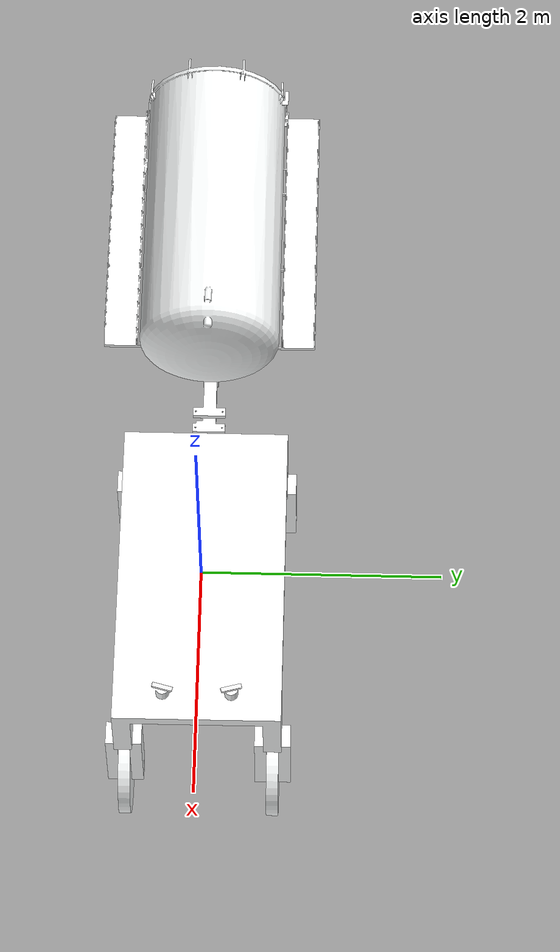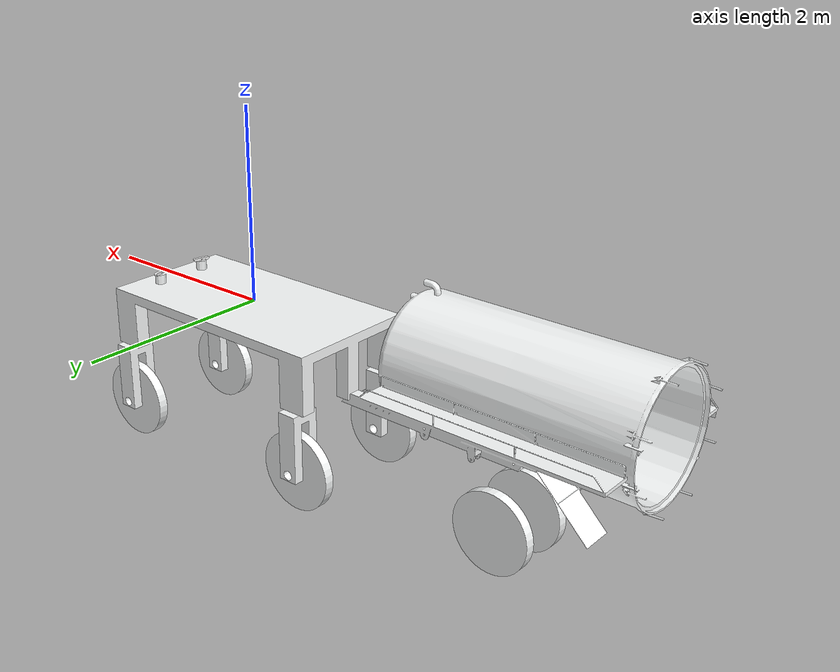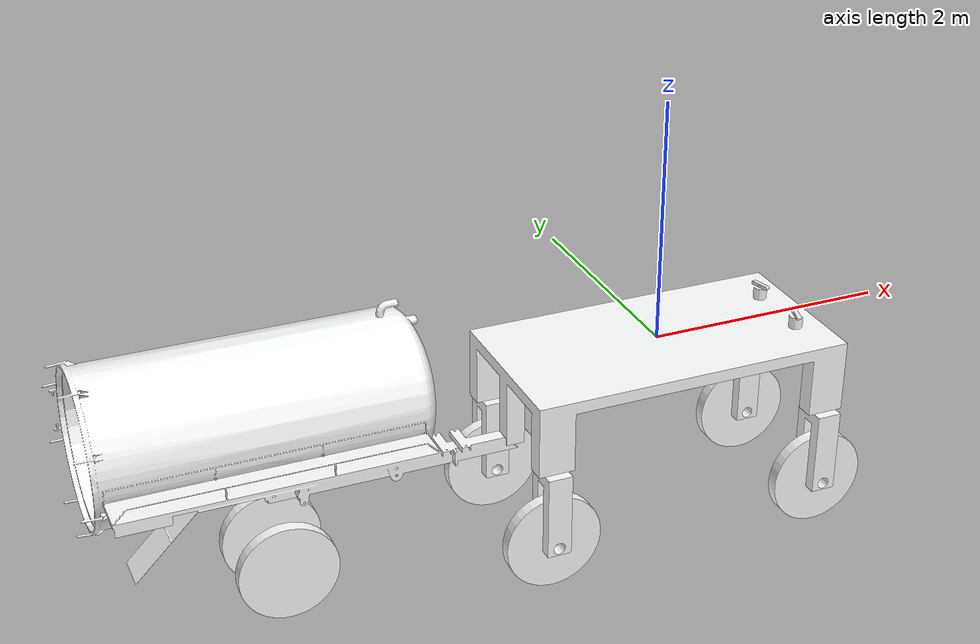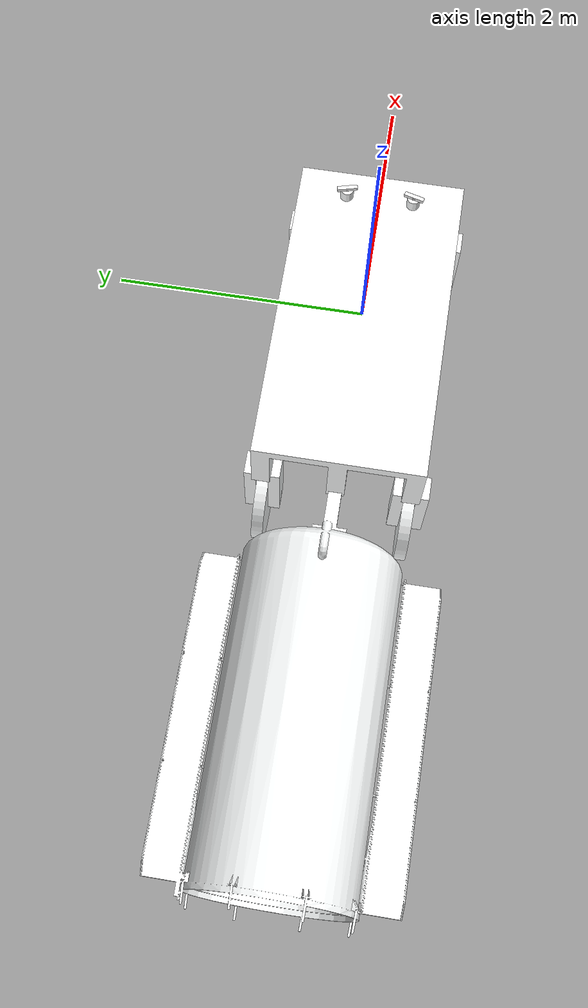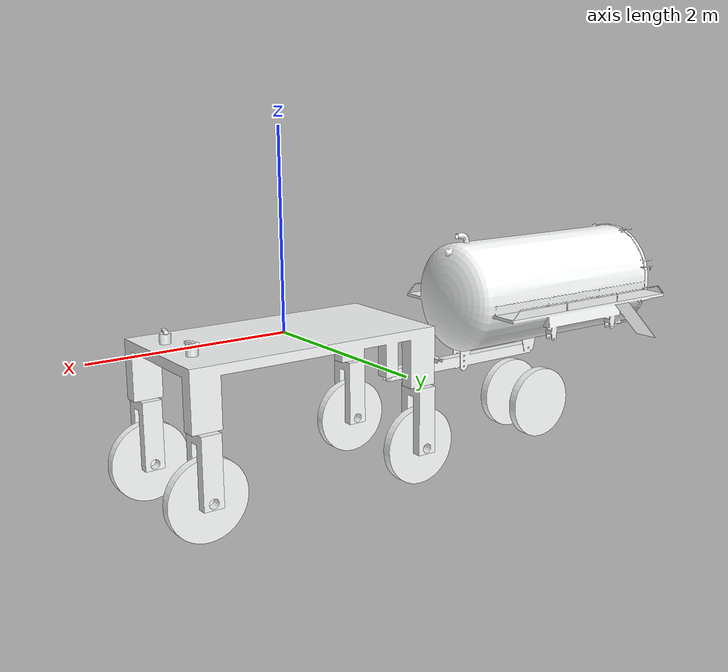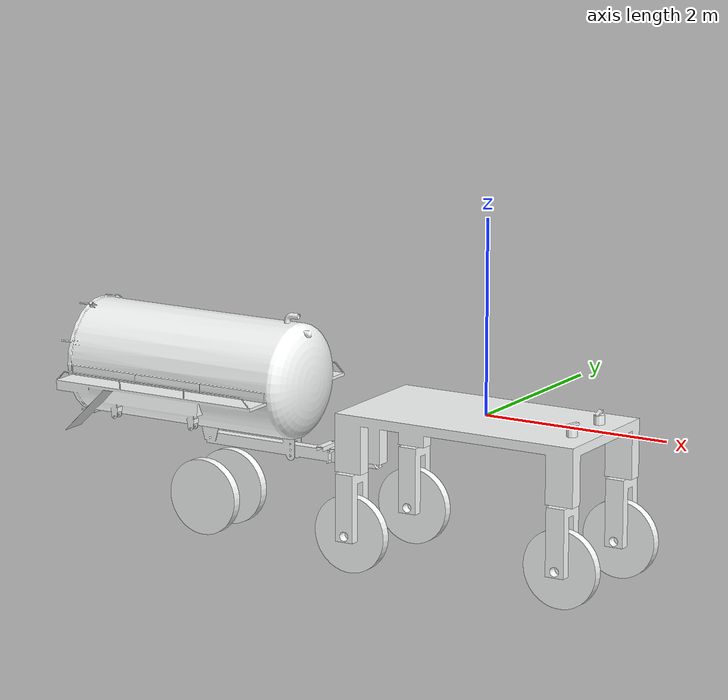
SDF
<?xml version="1.0" ?>
<sdf version="1.11" xmlns:xacro="http://www.ros.org/wiki/xacro">
  <model name="Robot_urdf">
    <link name="base_link">
      <inertial>
        <pose>-0.024335107685038101 -1.6135257514823399e-16 -0.102986981965144 0 0 0</pose>
        <mass>455.814758394477</mass>
        <inertia>
          <ixx>94.642726422289698</ixx>
          <ixy>3.5936259730888503e-14</ixy>
          <ixz>-4.7395613314737002</ixz>
          <iyy>352.85207157773101</iyy>
          <iyz>-1.4515643708039899e-14</iyz>
          <izz>431.07800059209802</izz>
        </inertia>
      </inertial>
      <collision name="base_link_collision">
        <pose>0 0 0 0 0 0</pose>
        <geometry>
          <mesh>
            <scale>1 1 1</scale>
            <uri>package://Robot_urdf/meshes/visual/base_link.STL</uri>
          </mesh>
        </geometry>
      </collision>
      <visual name="base_link_visual">
        <pose>0 0 0 0 0 0</pose>
        <geometry>
          <mesh>
            <scale>1 1 1</scale>
            <uri>package://Robot_urdf/meshes/visual/base_link.STL</uri>
          </mesh>
        </geometry>
        <material>
          <diffuse>0.990196109 1 1 1</diffuse>
          <ambient>0.990196109 1 1 1</ambient>
        </material>
      </visual>
    </link>
    <joint name="Left_camera_link_j" type="fixed">
      <pose relative_to="base_link">1.1359999999999999 0.28766999999999998 0.11513 8.6789044596724832e-19 0.03490699999999998 0.26180000000000003</pose>
      <parent>base_link</parent>
      <child>Left_camera_link</child>
      <axis>
        <xyz>0 0 1</xyz>
        <limit>
          <lower>-inf</lower>
          <upper>inf</upper>
        </limit>
        <dynamics>
          <spring_reference>0</spring_reference>
          <spring_stiffness>0</spring_stiffness>
        </dynamics>
      </axis>
    </joint>
    <link name="Left_camera_link">
      <pose relative_to="Left_camera_link_j">0 0 0 0 0 0</pose>
      <inertial>
        <pose>-0.019250583111303701 8.8406917919670004e-07 -0.00085342380869873901 0 0 0</pose>
        <mass>0.17032263428925101</mass>
        <inertia>
          <ixx>0.00038295573326242998</ixx>
          <ixy>3.2459058119113701e-09</ixy>
          <ixz>-3.3203253496914802e-07</ixz>
          <iyy>3.25735374572707e-05</iyy>
          <iyz>1.4987913441288701e-09</iyz>
          <izz>0.00039060234100719702</izz>
        </inertia>
      </inertial>
      <collision name="Left_camera_link_collision">
        <pose>0 0 0 0 0 0</pose>
        <geometry>
          <mesh>
            <scale>1 1 1</scale>
            <uri>package://Robot_urdf/meshes/visual/Left_camera_link.STL</uri>
          </mesh>
        </geometry>
      </collision>
      <visual name="Left_camera_link_visual">
        <pose>0 0 0 0 0 0</pose>
        <geometry>
          <mesh>
            <scale>1 1 1</scale>
            <uri>package://Robot_urdf/meshes/visual/Left_camera_link.STL</uri>
          </mesh>
        </geometry>
        <material>
          <diffuse>0.941176474 0.941176474 0.941176474 1</diffuse>
          <ambient>0.941176474 0.941176474 0.941176474 1</ambient>
        </material>
      </visual>

      <sensor name="left_rgbd_camera" type="rgbd_camera">
        <camera name="Left_camera_link">
          <horizontal_fov>1.91986</horizontal_fov>
          <image>
            <width>640</width>
            <height>480</height>
          </image>
          <clip>
            <near>0.1</near>
            <far>300.7</far>
          </clip>
          <depth_camera>
            <clip>
              <near>0.4</near>
              <far>20.0</far>
            </clip>
          </depth_camera>
          <noise>
            <type>gaussian</type>
            <mean>0</mean>
            <stddev>0.007</stddev>
          </noise>
          <optical_frame_id>left_camera_link_optical</optical_frame_id>
        </camera>
        <always_on>1</always_on>
        <update_rate>30</update_rate>
        <gz_frame_id>Left_camera_link</gz_frame_id>
        <topic>left_camera</topic>
      </sensor>
      <!--used only to solve the problem of pointcloud orientation (this sensor used to pubish only the point cloud)-->
      <sensor name="left_rgbd_camera1" type="rgbd_camera">
        <camera name="left_camera_link_point">
          <horizontal_fov>1.91986</horizontal_fov>
          <image>
            <width>640</width>
            <height>480</height>
          </image>
          <clip>
            <near>0.1</near>
            <far>300.7</far>
          </clip>
          <depth_camera>
            <clip>
              <near>0.4</near>
              <far>20.0</far>
            </clip>
          </depth_camera>
          <noise>
            <type>gaussian</type>
            <mean>0</mean>
            <stddev>0.007</stddev>
          </noise>
        </camera>
        <always_on>1</always_on>
        <update_rate>30</update_rate>
        <gz_frame_id>Left_camera_link</gz_frame_id>
        <topic>left_camera_point</topic>
      </sensor>
    </link>
    <!-- this link was added to adjust the camera frame prespective-->
    <joint name="left_camera_optical_joint" type="fixed">
      <pose relative_to='Left_camera_link'>0 0 0 -1.5707 0 -1.5707</pose>
      <parent>Left_camera_link</parent>
      <child>left_camera_link_optical</child>
    </joint>
    <link name="left_camera_link_optical">
    </link>

    <joint name="right_camera_link_j" type="fixed">
      <pose relative_to="base_link">1.1359999999999999 -0.28766999999999998 0.11513 -8.6789044596724832e-19 0.03490699999999998 -0.26180000000000003</pose>
      <parent>base_link</parent>
      <child>right_camera_link</child>
      <axis>
        <xyz>0 0 1</xyz>
        <limit>
          <lower>-inf</lower>
          <upper>inf</upper>
        </limit>
        <dynamics>
          <spring_reference>0</spring_reference>
          <spring_stiffness>0</spring_stiffness>
        </dynamics>
      </axis>
    </joint>

    <link name="right_camera_link">
      <pose relative_to="right_camera_link_j">0 0 0 0 0 0</pose>
      <inertial>
        <pose>-0.019250583010916599 9.1452405043268602e-07 -0.00085342523084624999 0 0 0</pose>
        <mass>0.170322633624158</mass>
        <inertia>
          <ixx>0.000382955707279669</ixx>
          <ixy>3.2543702356762902e-09</ixy>
          <ixz>-3.3203155690654302e-07</ixz>
          <iyy>3.2573537465271902e-05</iyy>
          <iyz>1.4995985159705101e-09</iyz>
          <izz>0.00039060231512421197</izz>
        </inertia>
      </inertial>
      <collision name="right_camera_link_collision">
        <pose>0 0 0 0 0 0</pose>
        <geometry>
          <mesh>
            <scale>1 1 1</scale>
            <uri>package://Robot_urdf/meshes/visual/right_camera_link.STL</uri>
          </mesh>
        </geometry>
      </collision>
      <visual name="right_camera_link_visual">
        <pose>0 0 0 0 0 0</pose>
        <geometry>
          <mesh>
            <scale>1 1 1</scale>
            <uri>package://Robot_urdf/meshes/visual/right_camera_link.STL</uri>
          </mesh>
        </geometry>
        <material>
          <diffuse>0.941176474 0.941176474 0.941176474 1</diffuse>
          <ambient>0.941176474 0.941176474 0.941176474 1</ambient>
        </material>
      </visual>

      <sensor name="right_rgbd_camera" type="rgbd_camera">
        <camera name="right_camera_link">
          <horizontal_fov>1.91986</horizontal_fov>
          <image>
            <width>640</width>
            <height>480</height>
          </image>
          <clip>
            <near>0.1</near>
            <far>300.7</far>
          </clip>
          <depth_camera>
            <clip>
              <near>0.4</near>
              <far>20.0</far>
            </clip>
          </depth_camera>
          <noise>
            <type>gaussian</type>
            <mean>0</mean>
            <stddev>0.007</stddev>
          </noise>
          <optical_frame_id>right_camera_link_optical</optical_frame_id>
        </camera>
        <always_on>1</always_on>
        <update_rate>30</update_rate>
        <gz_frame_id>right_camera_link</gz_frame_id>
        <topic>right_camera</topic>
      </sensor>

      <!--used only to solve the problem of pointcloud orientation (this sensor used to pubish only the point cloud)-->
      <sensor name="right_rgbd_camera1" type="rgbd_camera">
        <camera name="right_camera_link_point">
          <horizontal_fov>1.91986</horizontal_fov>
          <image>
            <width>640</width>
            <height>480</height>
          </image>
          <clip>
            <near>0.1</near>
            <far>300.7</far>
          </clip>
          <depth_camera>
            <clip>
              <near>0.4</near>
              <far>20.0</far>
            </clip>
          </depth_camera>
          <noise>
            <type>gaussian</type>
            <mean>0</mean>
            <stddev>0.007</stddev>
          </noise>
        </camera>
        <always_on>1</always_on>
        <update_rate>30</update_rate>
        <gz_frame_id>right_camera_link</gz_frame_id>
        <topic>right_camera_point</topic>
      </sensor>
    </link>

    <!-- this link was added to adjust the camera frame prespective-->
    <joint type="fixed" name="right_camera_optical_joint">
      <pose relative_to='right_camera_link'>0 0 0 -1.5707 0 -1.5707</pose>
      <parent>right_camera_link</parent>
      <child>right_camera_link_optical</child>
    </joint>

    <link name="right_camera_link_optical">
    </link>

    <joint name="steer_back_left_link_j" type="revolute">
      <pose relative_to="base_link">-1.18912895214602 0.62 -0.45000000000000001 0 0 0</pose>
      <parent>base_link</parent>
      <child>steer_back_left_link</child>
      <axis>
        <xyz>0 0 1</xyz>
        <limit>
          <lower>-3.14159</lower>
          <upper>3.14159</upper>
          <effort>2000</effort>
          <velocity>4</velocity>
        </limit>
        <dynamics>
          <damping>0.1</damping>
        </dynamics>
      </axis>
    </joint>
    <link name="steer_back_left_link">
      <pose relative_to="steer_back_left_link_j">0 0 0 0 0 0</pose>
      <inertial>
        <pose>-2.2204460492503101e-16 0 -0.41351956926969102 0 0 0</pose>
        <mass>31.822123739082102</mass>
        <inertia>
          <ixx>2.11863450177457</ixx>
          <ixy>1.8279285175120599e-16</ixy>
          <ixz>7.8711203730703606e-17</ixz>
          <iyy>1.9296697142772701</iyy>
          <iyz>3.7743403640639e-17</iyz>
          <izz>0.393108548207387</izz>
        </inertia>
      </inertial>
      <collision name="steer_back_left_link_collision">
        <pose>0 0 0 0 0 0</pose>
        <geometry>
          <mesh>
            <scale>1 1 1</scale>
            <uri>package://Robot_urdf/meshes/visual/steer_back_left_link.STL</uri>
          </mesh>
        </geometry>
      </collision>
      <visual name="steer_back_left_link_visual">
        <pose>0 0 0 0 0 0</pose>
        <geometry>
          <mesh>
            <scale>1 1 1</scale>
            <uri>package://Robot_urdf/meshes/visual/steer_back_left_link.STL</uri>
          </mesh>
        </geometry>
        <material>
          <diffuse>0.990196109 1 1 1</diffuse>
          <ambient>0.990196109 1 1 1</ambient>
        </material>
      </visual>
    </link>
    <joint name="drive_back_left_link_j" type="revolute">
      <pose relative_to="steer_back_left_link">0 -0.050000000000000197 -0.79000000000000004 0 0 0</pose>
      <parent>steer_back_left_link</parent>
      <child>drive_back_left_link</child>
      <axis>
        <xyz>0 1 0</xyz>
        <limit>
          <lower>-inf</lower>
          <upper>inf</upper>
        </limit>
        <dynamics>
          <damping>0.1</damping>
        </dynamics>
      </axis>
    </joint>
    <link name="drive_back_left_link">
      <pose relative_to="drive_back_left_link_j">0 0 0 0 0 0</pose>
      <inertial>
        <pose>0 0.050000000000000197 0 0 0 0</pose>
        <mass>50.265482457436804</mass>
        <inertia>
          <ixx>2.05250720034533</ixx>
          <ixy>-1.65953769400635e-15</ixy>
          <ixz>-3.7007434154171901e-16</ixz>
          <iyy>4.02123859659494</iyy>
          <iyz>-1.5862527624125499e-17</iyz>
          <izz>2.0525072003453402</izz>
        </inertia>
      </inertial>
      <collision name="drive_back_left_link_collision">
        <pose>0 0 0 0 0 0</pose>
        <geometry>
          <mesh>
            <scale>1 1 1</scale>
            <uri>package://Robot_urdf/meshes/visual/drive_back_left_link.STL</uri>
          </mesh>
        </geometry>
      </collision>
      <visual name="drive_back_left_link_visual">
        <pose>0 0 0 0 0 0</pose>
        <geometry>
          <mesh>
            <scale>1 1 1</scale>
            <uri>package://Robot_urdf/meshes/visual/drive_back_left_link.STL</uri>
          </mesh>
        </geometry>
        <material>
          <diffuse>0.990196109 1 1 1</diffuse>
          <ambient>0.990196109 1 1 1</ambient>
        </material>
      </visual>
    </link>
    <joint name="steer_back_right_link_j" type="revolute">
      <pose relative_to="base_link">-1.18912895214602 -0.62 -0.45000000000000001 0 0 0</pose>
      <parent>base_link</parent>
      <child>steer_back_right_link</child>
      <axis>
        <xyz>0 0 1</xyz>
        <limit>
          <lower>-3.14159</lower>
          <upper>3.14159</upper>
          <effort>2000</effort>
          <velocity>4</velocity>
        </limit>
        <dynamics>
          <damping>0.1</damping>
        </dynamics>
      </axis>
    </joint>
    <link name="steer_back_right_link">
      <pose relative_to="steer_back_right_link_j">0 0 0 0 0 0</pose>
      <inertial>
        <pose>-2.2204460492503101e-16 0 -0.41351956926969102 0 0 0</pose>
        <mass>31.822123739081999</mass>
        <inertia>
          <ixx>2.11863450177457</ixx>
          <ixy>-3.6550784670468497e-17</ixy>
          <ixz>2.2902041138848798e-16</ixz>
          <iyy>1.9296697142772701</iyy>
          <iyz>-1.4887331804987901e-17</iyz>
          <izz>0.393108548207387</izz>
        </inertia>
      </inertial>
      <collision name="steer_back_right_link_collision">
        <pose>0 0 0 0 0 0</pose>
        <geometry>
          <mesh>
            <scale>1 1 1</scale>
            <uri>package://Robot_urdf/meshes/visual/steer_back_right_link.STL</uri>
          </mesh>
        </geometry>
      </collision>
      <visual name="steer_back_right_link_visual">
        <pose>0 0 0 0 0 0</pose>
        <geometry>
          <mesh>
            <scale>1 1 1</scale>
            <uri>package://Robot_urdf/meshes/visual/steer_back_right_link.STL</uri>
          </mesh>
        </geometry>
        <material>
          <diffuse>0.990196109 1 1 1</diffuse>
          <ambient>0.990196109 1 1 1</ambient>
        </material>
      </visual>
    </link>
    <joint name="drive_back_right_link_j" type="revolute">
      <pose relative_to="steer_back_right_link">0 -0.049999999999999802 -0.79000000000000004 0 0 0</pose>
      <parent>steer_back_right_link</parent>
      <child>drive_back_right_link</child>
      <axis>
        <xyz>0 1 0</xyz>
        <limit>
          <lower>-inf</lower>
          <upper>inf</upper>
        </limit>
        <dynamics>
          <damping>0.1</damping>
        </dynamics>
      </axis>
    </joint>
    <link name="drive_back_right_link">
      <pose relative_to="drive_back_right_link_j">0 0 0 0 0 0</pose>
      <inertial>
        <pose>0 0.049999999999999899 0 0 0 0</pose>
        <mass>50.265482457436697</mass>
        <inertia>
          <ixx>2.05250720034533</ixx>
          <ixy>5.56928548429207e-17</ixy>
          <ixz>7.2280144832366998e-18</ixz>
          <iyy>4.0212385965949302</iyy>
          <iyz>-7.46409543899459e-19</iyz>
          <izz>2.05250720034533</izz>
        </inertia>
      </inertial>
      <collision name="drive_back_right_link_collision">
        <pose>0 0 0 0 0 0</pose>
        <geometry>
          <mesh>
            <scale>1 1 1</scale>
            <uri>package://Robot_urdf/meshes/visual/drive_back_right_link.STL</uri>
          </mesh>
        </geometry>
      </collision>
      <visual name="drive_back_right_link_visual">
        <pose>0 0 0 0 0 0</pose>
        <geometry>
          <mesh>
            <scale>1 1 1</scale>
            <uri>package://Robot_urdf/meshes/visual/drive_back_right_link.STL</uri>
          </mesh>
        </geometry>
        <material>
          <diffuse>0.990196109 1 1 1</diffuse>
          <ambient>0.990196109 1 1 1</ambient>
        </material>
      </visual>
    </link>
    <joint name="steer_front_left_link_j" type="revolute">
      <pose relative_to="base_link">1.2008710478539799 0.62 -0.45000000000000001 0 0 0</pose>
      <parent>base_link</parent>
      <child>steer_front_left_link</child>
      <axis>
        <xyz>0 0 1</xyz>
        <limit>
          <lower>-3.14159</lower>
          <upper>3.14159</upper>
          <effort>2000</effort>
          <velocity>4</velocity>
        </limit>
        <dynamics>
          <damping>0.1</damping>
        </dynamics>
      </axis>
    </joint>
    <link name="steer_front_left_link">
      <pose relative_to="steer_front_left_link_j">0 0 0 0 0 0</pose>
      <inertial>
        <pose>2.2204e-16 0 -0.41352 0 0 0</pose>
        <mass>31.821999999999999</mass>
        <inertia>
          <ixx>2.1185999999999998</ixx>
          <ixy>1.622e-16</ixy>
          <ixz>-5.3020000000000003e-17</ixz>
          <iyy>1.9297</iyy>
          <iyz>3.3581e-17</iyz>
          <izz>0.39311000000000001</izz>
        </inertia>
      </inertial>
      <collision name="steer_front_left_link_collision">
        <pose>0 0 0 0 0 0</pose>
        <geometry>
          <mesh>
            <scale>1 1 1</scale>
            <uri>package://Robot_urdf/meshes/visual/steer_front_left_link.STL</uri>
          </mesh>
        </geometry>
      </collision>
      <visual name="steer_front_left_link_visual">
        <pose>0 0 0 0 0 0</pose>
        <geometry>
          <mesh>
            <scale>1 1 1</scale>
            <uri>package://Robot_urdf/meshes/visual/steer_front_left_link.STL</uri>
          </mesh>
        </geometry>
        <material>
          <diffuse>0.990199983 1 1 1</diffuse>
          <ambient>0.990199983 1 1 1</ambient>
        </material>
      </visual>
    </link>
    <joint name="drive_front_left_link_j" type="revolute">
      <pose relative_to="steer_front_left_link">0 -0.049999999999999802 -0.79000000000000004 0 0 0</pose>
      <parent>steer_front_left_link</parent>
      <child>drive_front_left_link</child>
      <axis>
        <xyz>0 1 0</xyz>
        <limit>
          <lower>-inf</lower>
          <upper>inf</upper>
        </limit>
        <dynamics>
          <damping>0.1</damping>
        </dynamics>
      </axis>
    </joint>
    <link name="drive_front_left_link">
      <pose relative_to="drive_front_left_link_j">0 0 0 0 0 0</pose>
      <inertial>
        <pose>0 0.050000000000000197 -2.2204460492503101e-16 0 0 0</pose>
        <mass>50.265482457436697</mass>
        <inertia>
          <ixx>2.05250720034533</ixx>
          <ixy>-9.6140966827479496e-16</ixy>
          <ixz>-1.93710788150743e-16</ixz>
          <iyy>4.0212385965949302</iyy>
          <iyz>-1.7073729801098602e-17</iyz>
          <izz>2.05250720034533</izz>
        </inertia>
      </inertial>
      <collision name="drive_front_left_link_collision">
        <pose>0 0 0 0 0 0</pose>
        <geometry>
          <mesh>
            <scale>1 1 1</scale>
            <uri>package://Robot_urdf/meshes/visual/drive_front_left_link.STL</uri>
          </mesh>
        </geometry>
      </collision>
      <visual name="drive_front_left_link_visual">
        <pose>0 0 0 0 0 0</pose>
        <geometry>
          <mesh>
            <scale>1 1 1</scale>
            <uri>package://Robot_urdf/meshes/visual/drive_front_left_link.STL</uri>
          </mesh>
        </geometry>
        <material>
          <diffuse>0.990196109 1 1 1</diffuse>
          <ambient>0.990196109 1 1 1</ambient>
        </material>
      </visual>
    </link>
    <joint name="steer_front_right_link_j" type="revolute">
      <pose relative_to="base_link">1.2008710478539799 -0.62 -0.45000000000000001 0 0 0</pose>
      <parent>base_link</parent>
      <child>steer_front_right_link</child>
      <axis>
        <xyz>0 0 1</xyz>
        <limit>
          <lower>-3.14159</lower>
          <upper>3.14159</upper>
          <effort>2000</effort>
          <velocity>4</velocity>
        </limit>
        <dynamics>
          <damping>0.1</damping>
        </dynamics>
      </axis>
    </joint>
    <link name="steer_front_right_link">
      <pose relative_to="steer_front_right_link_j">0 0 0 0 0 0</pose>
      <inertial>
        <pose>-2.2204460492503101e-16 -1.11022302462516e-16 -0.41351956926969102 0 0 0</pose>
        <mass>31.822123739082102</mass>
        <inertia>
          <ixx>2.11863450177457</ixx>
          <ixy>-1.57170518626472e-17</ixy>
          <ixz>2.2780085571761699e-18</ixz>
          <iyy>1.9296697142772701</iyy>
          <iyz>-1.9798972787948701e-17</iyz>
          <izz>0.393108548207388</izz>
        </inertia>
      </inertial>
      <collision name="steer_front_right_link_collision">
        <pose>0 0 0 0 0 0</pose>
        <geometry>
          <mesh>
            <scale>1 1 1</scale>
            <uri>package://Robot_urdf/meshes/visual/steer_front_right_link.STL</uri>
          </mesh>
        </geometry>
      </collision>
      <visual name="steer_front_right_link_visual">
        <pose>0 0 0 0 0 0</pose>
        <geometry>
          <mesh>
            <scale>1 1 1</scale>
            <uri>package://Robot_urdf/meshes/visual/steer_front_right_link.STL</uri>
          </mesh>
        </geometry>
        <material>
          <diffuse>0.990196109 1 1 1</diffuse>
          <ambient>0.990196109 1 1 1</ambient>
        </material>
      </visual>
    </link>
    <joint name="drive_front_right_link_j" type="revolute">
      <pose relative_to="steer_front_right_link">0 -0.050000000000000197 -0.79000000000000004 0 0 0</pose>
      <parent>steer_front_right_link</parent>
      <child>drive_front_right_link</child>
      <axis>
        <xyz>0 1 0</xyz>
        <limit>
          <lower>-inf</lower>
          <upper>inf</upper>
        </limit>
        <dynamics>
          <damping>0.1</damping>
        </dynamics>
      </axis>
    </joint>
    <link name="drive_front_right_link">
      <pose relative_to="drive_front_right_link_j">0 0 0 0 0 0</pose>
      <inertial>
        <pose>0 0.049999999999999899 -2.2204460492503101e-16 0 0 0</pose>
        <mass>50.265482457436697</mass>
        <inertia>
          <ixx>2.05250720034533</ixx>
          <ixy>-2.15428176892479e-16</ixy>
          <ixz>-1.47451495458029e-16</ixz>
          <iyy>4.0212385965949302</iyy>
          <iyz>-2.53528834134516e-17</iyz>
          <izz>2.05250720034533</izz>
        </inertia>
      </inertial>
      <collision name="drive_front_right_link_collision">
        <pose>0 0 0 0 0 0</pose>
        <geometry>
          <mesh>
            <scale>1 1 1</scale>
            <uri>package://Robot_urdf/meshes/visual/drive_front_right_link.STL</uri>
          </mesh>
        </geometry>
      </collision>
      <visual name="drive_front_right_link_visual">
        <pose>0 0 0 0 0 0</pose>
        <geometry>
          <mesh>
            <scale>1 1 1</scale>
            <uri>package://Robot_urdf/meshes/visual/drive_front_right_link.STL</uri>
          </mesh>
        </geometry>
        <material>
          <diffuse>0.990196109 1 1 1</diffuse>
          <ambient>0.990196109 1 1 1</ambient>
        </material>
      </visual>
    </link>
    <joint name="tow_link_j" type="revolute">
      <pose relative_to="base_link">-1.2641289521460199 0 -0.70999999999998298 0 0 0</pose>
      <parent>base_link</parent>
      <child>tow_link</child>
      <axis>
        <xyz>0 0 -1</xyz>
        <limit>
          <lower>-inf</lower>
          <upper>inf</upper>
        </limit>
        <dynamics>
          <spring_reference>0</spring_reference>
          <spring_stiffness>0</spring_stiffness>
        </dynamics>
      </axis>
    </joint>
    <link name="tow_link">
      <pose relative_to="tow_link_j">0 0 0 0 0 0</pose>
      <inertial>
        <pose>-1.9134654214212099 0.034704885911445701 0.53339226432485498 0 0 0</pose>
        <mass>2817.0549764421999</mass>
        <inertia>
          <ixx>537.48994528396202</ixx>
          <ixy>20.874423816893099</ixy>
          <ixz>8.8885421899849693</ixz>
          <iyy>1688.0296381707899</iyy>
          <iyz>-0.161213178544621</iyz>
          <izz>1649.30504630773</izz>
        </inertia>
      </inertial>
      <collision name="tow_link_collision">
        <pose>0 0 0 0 0 0</pose>
        <geometry>
          <mesh>
            <scale>1 1 1</scale>
            <uri>package://Robot_urdf/meshes/visual/tow_link.STL</uri>
          </mesh>
        </geometry>
      </collision>
      <visual name="tow_link_visual">
        <pose>0 0 0 0 0 0</pose>
        <geometry>
          <mesh>
            <scale>1 1 1</scale>
            <uri>package://Robot_urdf/meshes/visual/tow_link.STL</uri>
          </mesh>
        </geometry>
        <material>
          <diffuse>0.990196109 1 1 1</diffuse>
          <ambient>0.990196109 1 1 1</ambient>
        </material>
      </visual>
    </link>
    <joint name="left_wheel_link_j" type="revolute">
      <pose relative_to="tow_link">-1.9461072811843101 0.235329810585238 -0.53000000000000003 0 0 0</pose>
      <parent>tow_link</parent>
      <child>left_wheel_link</child>
      <axis>
        <xyz>-0.0181342075544603 -0.99983556173821497 0</xyz>
        <limit>
          <lower>-inf</lower>
          <upper>inf</upper>
        </limit>
        <dynamics>
          <spring_reference>0</spring_reference>
          <spring_stiffness>0</spring_stiffness>
        </dynamics>
      </axis>
    </joint>
    <link name="left_wheel_link">
      <pose relative_to="left_wheel_link_j">0 0 0 0 0 0</pose>
      <inertial>
        <pose>0.00090671037772249697 0.049991778086910701 0 0 0 0</pose>
        <mass>50.265482457436697</mass>
        <inertia>
          <ixx>2.0531546166483898</ixx>
          <ixy>0.035695513085080198</ixy>
          <ixz>-2.9490299091605701e-16</ixz>
          <iyy>4.0205911802918797</iyy>
          <iyz>-2.0292650661687001e-16</iyz>
          <izz>2.05250720034533</izz>
        </inertia>
      </inertial>
      <collision name="left_wheel_link_collision">
        <pose>0 0 0 0 0 0</pose>
        <geometry>
          <mesh>
            <scale>1 1 1</scale>
            <uri>package://Robot_urdf/meshes/visual/left_wheel_link.STL</uri>
          </mesh>
        </geometry>
      </collision>
      <visual name="left_wheel_link_visual">
        <pose>0 0 0 0 0 0</pose>
        <geometry>
          <mesh>
            <scale>1 1 1</scale>
            <uri>package://Robot_urdf/meshes/visual/left_wheel_link.STL</uri>
          </mesh>
        </geometry>
        <material>
          <diffuse>0.990196109 1 1 1</diffuse>
          <ambient>0.990196109 1 1 1</ambient>
        </material>
      </visual>
    </link>
    <joint name="right_wheel_link_j" type="revolute">
      <pose relative_to="tow_link">-1.9551743849615399 -0.26458797028386999 -0.53000000000000003 0 0 0</pose>
      <parent>tow_link</parent>
      <child>right_wheel_link</child>
      <axis>
        <xyz>-0.0181342075544603 -0.99983556173821497 0</xyz>
        <limit>
          <lower>-inf</lower>
          <upper>inf</upper>
        </limit>
        <dynamics>
          <spring_reference>0</spring_reference>
          <spring_stiffness>0</spring_stiffness>
        </dynamics>
      </axis>
    </joint>
    <link name="right_wheel_link">
      <pose relative_to="right_wheel_link_j">0 0 0 0 0 0</pose>
      <inertial>
        <pose>0.00090671037772294095 0.049991778086910701 0 0 0 0</pose>
        <mass>50.265482457436697</mass>
        <inertia>
          <ixx>2.0531546166483898</ixx>
          <ixy>0.035695513085080198</ixy>
          <ixz>-5.6667633548575702e-16</ixz>
          <iyy>4.0205911802918797</iyy>
          <iyz>-1.8368191805525299e-16</iyz>
          <izz>2.05250720034533</izz>
        </inertia>
      </inertial>
      <collision name="right_wheel_link_collision">
        <pose>0 0 0 0 0 0</pose>
        <geometry>
          <mesh>
            <scale>1 1 1</scale>
            <uri>package://Robot_urdf/meshes/visual/right_wheel_link.STL</uri>
          </mesh>
        </geometry>
      </collision>
      <visual name="right_wheel_link_visual">
        <pose>0 0 0 0 0 0</pose>
        <geometry>
          <mesh>
            <scale>1 1 1</scale>
            <uri>package://Robot_urdf/meshes/visual/right_wheel_link.STL</uri>
          </mesh>
        </geometry>
        <material>
          <diffuse>0.990196109 1 1 1</diffuse>
          <ambient>0.990196109 1 1 1</ambient>
        </material>
      </visual>
    </link>

    <plugin
      filename="gz-sim-joint-position-controller-system"
      name="gz::sim::systems::JointPositionController">
      <joint_name>steer_back_left_link_j</joint_name>
      <topic>rl_steering_pos_arm_joint</topic>
      <use_velocity_commands>true</use_velocity_commands>
      <cmd_max>10.0</cmd_max> <cmd_min>-10.0</cmd_min>
    </plugin>

    <plugin
      filename="gz-sim-joint-position-controller-system"
      name="gz::sim::systems::JointPositionController">
      <joint_name>steer_back_right_link_j</joint_name>
      <topic>rr_steering_pos_arm_joint</topic>
      <use_velocity_commands>true</use_velocity_commands>
      <cmd_max>10.0</cmd_max> <cmd_min>-10.0</cmd_min>
    </plugin>

    <plugin
      filename="gz-sim-joint-position-controller-system"
      name="gz::sim::systems::JointPositionController">
      <joint_name>steer_front_left_link_j</joint_name>
      <topic>fl_steering_pos_arm_joint</topic>
      <use_velocity_commands>true</use_velocity_commands>
      <cmd_max>10.0</cmd_max> <cmd_min>-10.0</cmd_min>
    </plugin>

    <plugin
      filename="gz-sim-joint-position-controller-system"
      name="gz::sim::systems::JointPositionController">
      <joint_name>steer_front_right_link_j</joint_name>
      <topic>fr_steering_pos_arm_joint</topic>
      <use_velocity_commands>true</use_velocity_commands>
      <cmd_max>10.0</cmd_max> <cmd_min>-10.0</cmd_min>
    </plugin>

    <plugin
      filename="gz-sim-joint-controller-system"
      name="gz::sim::systems::JointController">
      <joint_name>drive_back_left_link_j</joint_name>
      <topic>rl_motor_vel</topic>
      <initial_velocity>0.0</initial_velocity>
    </plugin>

    <plugin
      filename="gz-sim-joint-controller-system"
      name="gz::sim::systems::JointController">
      <joint_name>drive_back_right_link_j</joint_name>
      <topic>rr_motor_vel</topic>
      <initial_velocity>0.0</initial_velocity>
    </plugin>

    <plugin
      filename="gz-sim-joint-controller-system"
      name="gz::sim::systems::JointController">
      <joint_name>drive_front_left_link_j</joint_name>
      <topic>fl_motor_vel</topic>
      <initial_velocity>0.0</initial_velocity>
    </plugin>

    <plugin
      filename="gz-sim-joint-controller-system"
      name="gz::sim::systems::JointController">
      <joint_name>drive_front_right_link_j</joint_name>
      <topic>fr_motor_vel</topic>
      <initial_velocity>0.0</initial_velocity>
    </plugin>

    <plugin
      filename="gz-sim-joint-state-publisher-system"
      name="gz::sim::systems::JointStatePublisher">
      <topic>joints_feedback</topic>
    </plugin>

    <plugin filename="ignition-gazebo-odometry-publisher-system"
      name="ignition::gazebo::systems::OdometryPublisher">
      <odom_frame>odom</odom_frame>
      <odom_covariance_topic>odom</odom_covariance_topic>
      <tf_topic>tf</tf_topic>
      <robot_base_frame>base_link</robot_base_frame>
      <odom_publish_frequency>100</odom_publish_frequency>
    </plugin>

  </model>
</sdf>
